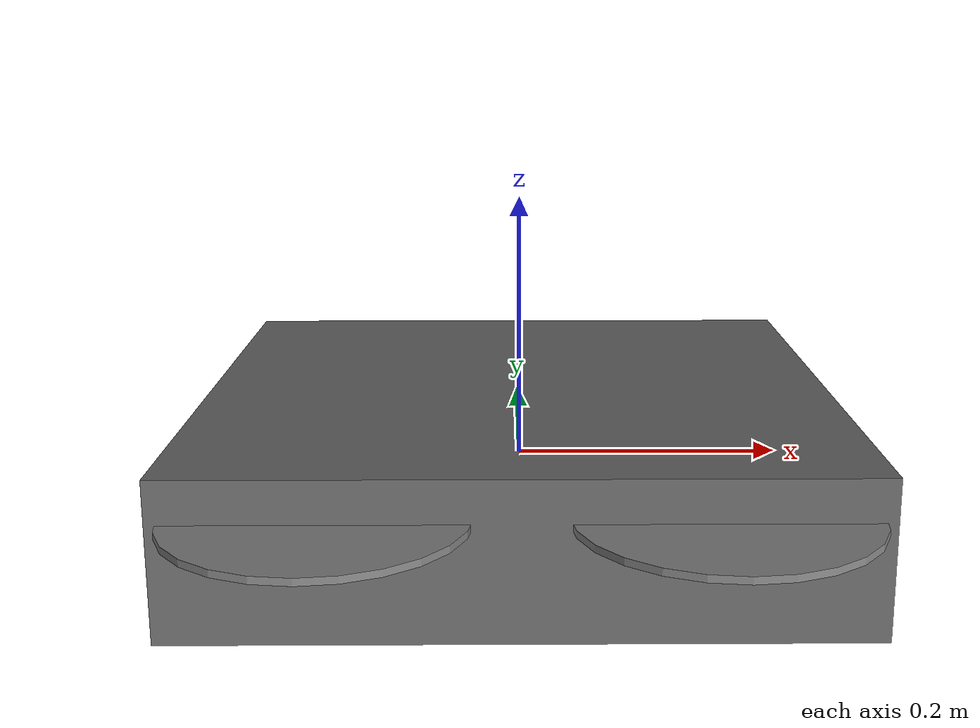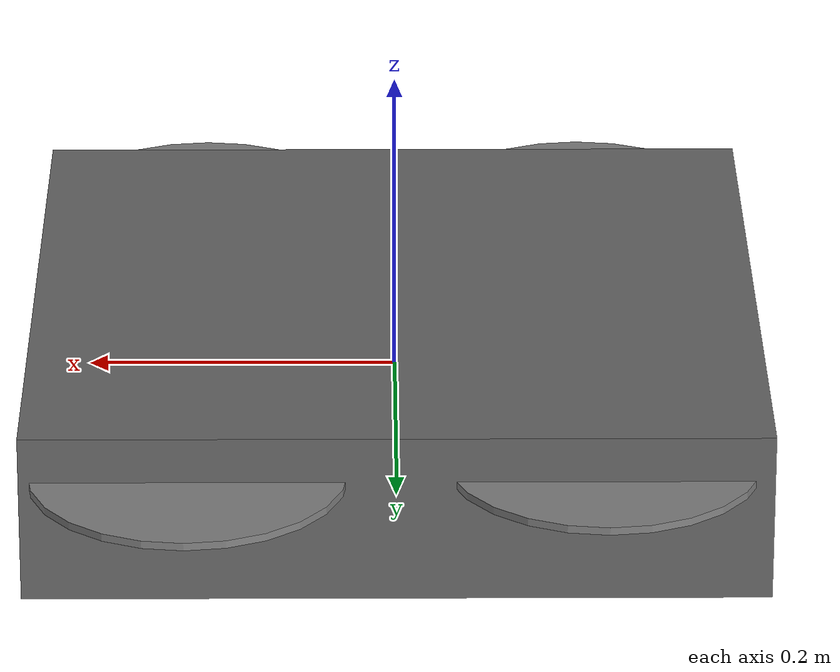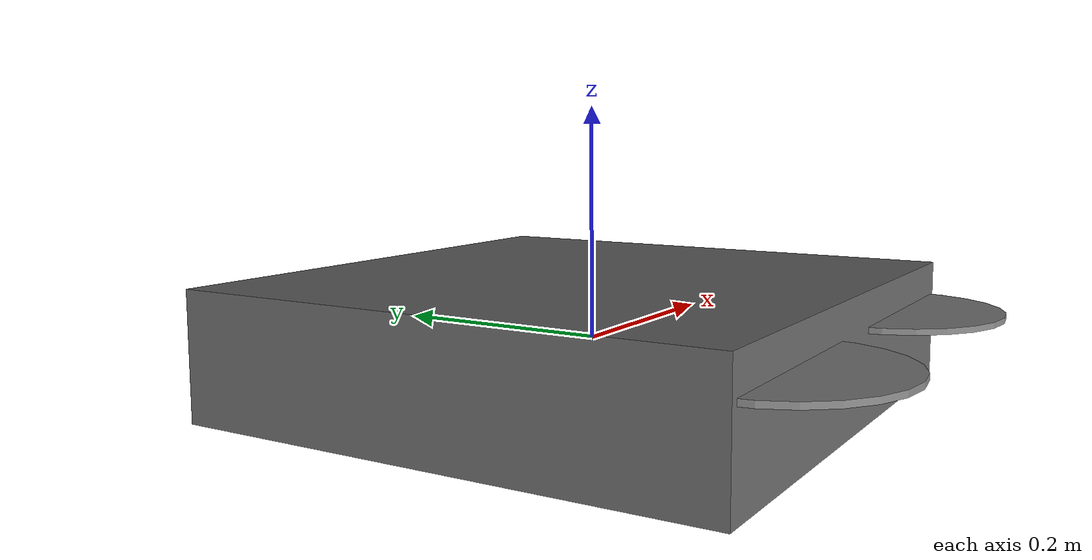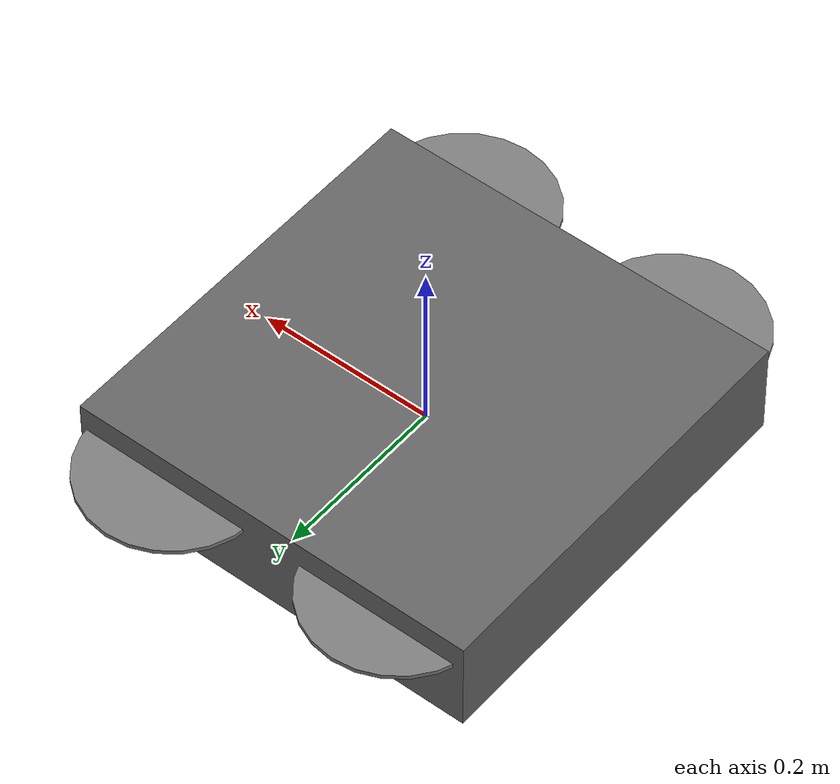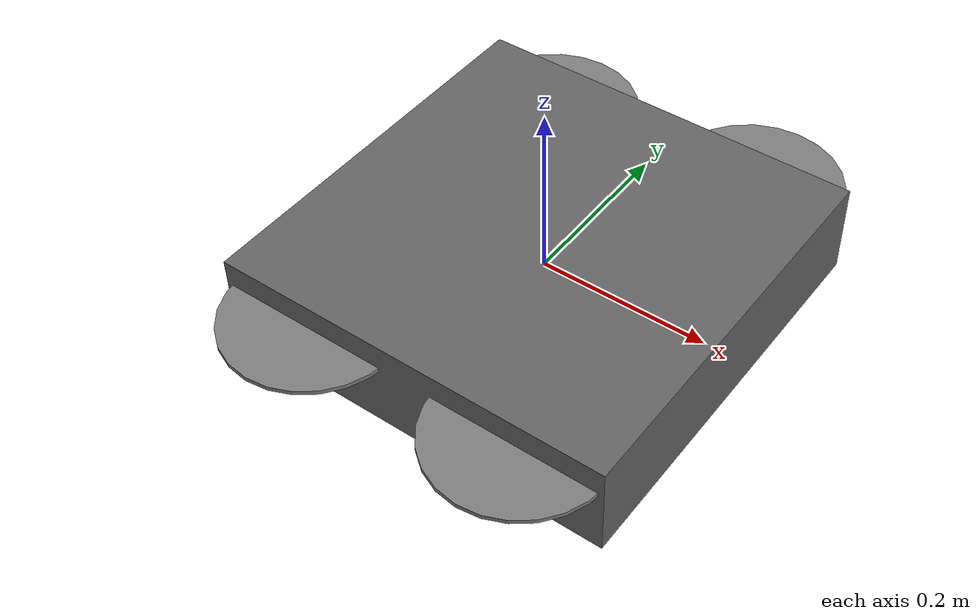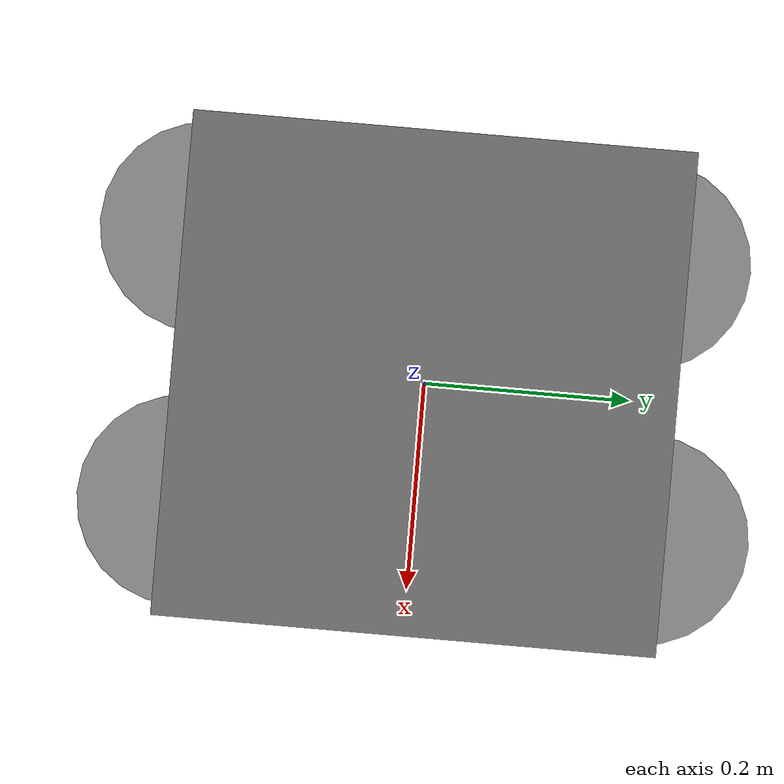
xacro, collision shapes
<?xml version="1.0"?>
<!-- X3 UAV quadcopter URDF (matches model.sdf structure for ROS2 robot_state_publisher / RViz).
     Pass name from launch: xacro ... name:=X3 (default: X3) -->
<robot xmlns:xacro="http://www.ros.org/wiki/xacro" name="$(arg name)">
  <xacro:arg name="name" default="X3"/>
  <xacro:property name="prefix" value="$(arg name)"/>

  <link name="${prefix}/base_footprint"/>

  <joint name="${prefix}/base_footprint_joint" type="fixed">
    <parent link="${prefix}/base_footprint"/>
    <child link="${prefix}/base_link"/>
    <origin xyz="0 0 0" rpy="0 0 0"/>
  </joint>

  <!-- Base link: X3 body mesh (matches model.sdf: box 0.47 x 0.47 x 0.11 m, mass 1.5 kg) -->
  <link name="${prefix}/base_link">
    <visual>
      <geometry>
        <mesh
          filename="package://mav_description/models/x3/meshes/x3.dae"
          scale="1.0 1.0 1.0"/>
      </geometry>
      <material name="x3_grey">
        <color rgba="0.4 0.4 0.4 1"/>
      </material>
    </visual>
    <collision>
      <geometry>
        <box size="0.47 0.47 0.11"/>
      </geometry>
    </collision>
    <inertial>
      <mass value="1.5"/>
      <inertia ixx="0.0347563" iyy="0.07" izz="0.0977" ixy="0" ixz="0" iyz="0"/>
    </inertial>
  </link>

  <!-- Rotor 0: front-right (x,y = 0.13 -0.22), ccw (matches model.sdf) -->
  <link name="${prefix}/rotor_0">
    <visual>
      <geometry>
        <mesh
          filename="package://mav_description/models/x3/meshes/propeller_ccw.dae"
          scale="0.1 0.1 0.1"/>
      </geometry>
      <material name="rotor_grey">
        <color rgba="0.5 0.5 0.5 1"/>
      </material>
    </visual>
    <collision>
      <geometry>
        <cylinder radius="0.1" length="0.005"/>
      </geometry>
    </collision>
    <inertial>
      <mass value="0.005"/>
      <inertia ixx="9.75e-7" iyy="4.17041e-5" izz="4.26041e-5" ixy="0" ixz="0" iyz="0"/>
    </inertial>
  </link>
  <joint name="${prefix}/rotor_0_joint" type="revolute">
    <parent link="${prefix}/base_link"/>
    <child link="${prefix}/rotor_0"/>
    <origin xyz="0.13 -0.22 0.023" rpy="0 0 0"/>
    <axis xyz="0 0 1"/>
    <limit lower="-1e16" upper="1e16" effort="100" velocity="1000"/>
  </joint>

  <!-- Rotor 1: rear-left (-0.13 0.2), ccw -->
  <link name="${prefix}/rotor_1">
    <visual>
      <geometry>
        <mesh
          filename="package://mav_description/models/x3/meshes/propeller_ccw.dae"
          scale="0.1 0.1 0.1"/>
      </geometry>
      <material name="rotor_grey"/>
    </visual>
    <collision>
      <geometry>
        <cylinder radius="0.1" length="0.005"/>
      </geometry>
    </collision>
    <inertial>
      <mass value="0.005"/>
      <inertia ixx="9.75e-7" iyy="4.17041e-5" izz="4.26041e-5" ixy="0" ixz="0" iyz="0"/>
    </inertial>
  </link>
  <joint name="${prefix}/rotor_1_joint" type="revolute">
    <parent link="${prefix}/base_link"/>
    <child link="${prefix}/rotor_1"/>
    <origin xyz="-0.13 0.2 0.023" rpy="0 0 0"/>
    <axis xyz="0 0 1"/>
    <limit lower="-1e16" upper="1e16" effort="100" velocity="1000"/>
  </joint>

  <!-- Rotor 2: rear-right (0.13 0.22), cw -->
  <link name="${prefix}/rotor_2">
    <visual>
      <geometry>
        <mesh
          filename="package://mav_description/models/x3/meshes/propeller_cw.dae"
          scale="0.1 0.1 0.1"/>
      </geometry>
      <material name="rotor_grey"/>
    </visual>
    <collision>
      <geometry>
        <cylinder radius="0.1" length="0.005"/>
      </geometry>
    </collision>
    <inertial>
      <mass value="0.005"/>
      <inertia ixx="9.75e-7" iyy="4.17041e-5" izz="4.26041e-5" ixy="0" ixz="0" iyz="0"/>
    </inertial>
  </link>
  <joint name="${prefix}/rotor_2_joint" type="revolute">
    <parent link="${prefix}/base_link"/>
    <child link="${prefix}/rotor_2"/>
    <origin xyz="0.13 0.22 0.023" rpy="0 0 0"/>
    <axis xyz="0 0 1"/>
    <limit lower="-1e16" upper="1e16" effort="100" velocity="1000"/>
  </joint>

  <!-- Rotor 3: front-left (-0.13 -0.22), cw -->
  <link name="${prefix}/rotor_3">
    <visual>
      <geometry>
        <mesh
          filename="package://mav_description/models/x3/meshes/propeller_cw.dae"
          scale="0.1 0.1 0.1"/>
      </geometry>
      <material name="rotor_grey"/>
    </visual>
    <collision>
      <geometry>
        <cylinder radius="0.1" length="0.005"/>
      </geometry>
    </collision>
    <inertial>
      <mass value="0.005"/>
      <inertia ixx="9.75e-7" iyy="4.17041e-5" izz="4.26041e-5" ixy="0" ixz="0" iyz="0"/>
    </inertial>
  </link>
  <joint name="${prefix}/rotor_3_joint" type="revolute">
    <parent link="${prefix}/base_link"/>
    <child link="${prefix}/rotor_3"/>
    <origin xyz="-0.13 -0.22 0.023" rpy="0 0 0"/>
    <axis xyz="0 0 1"/>
    <limit lower="-1e16" upper="1e16" effort="100" velocity="1000"/>
  </joint>
</robot>
